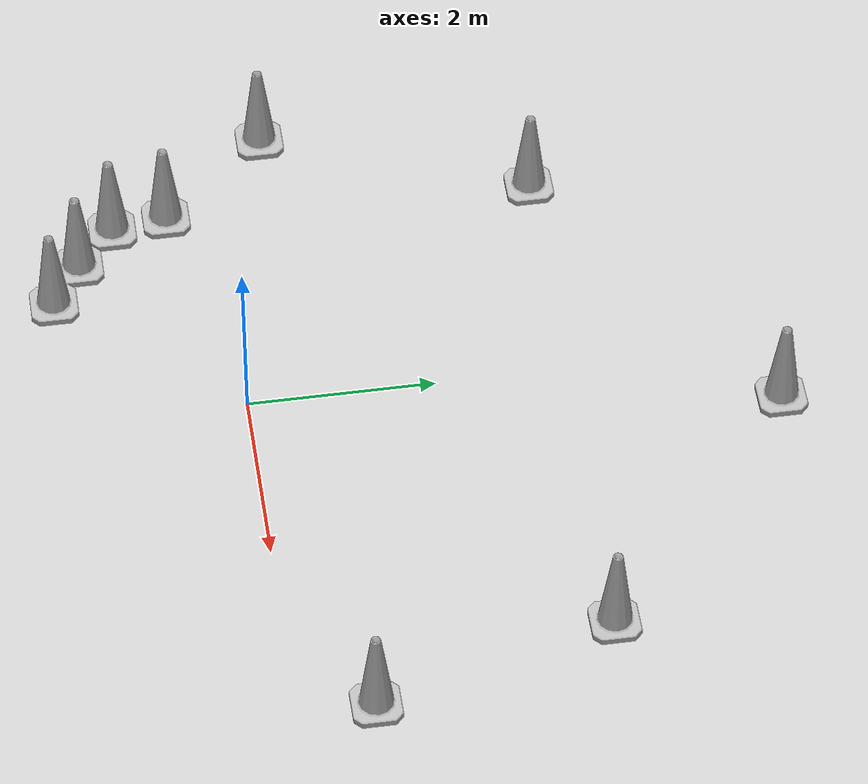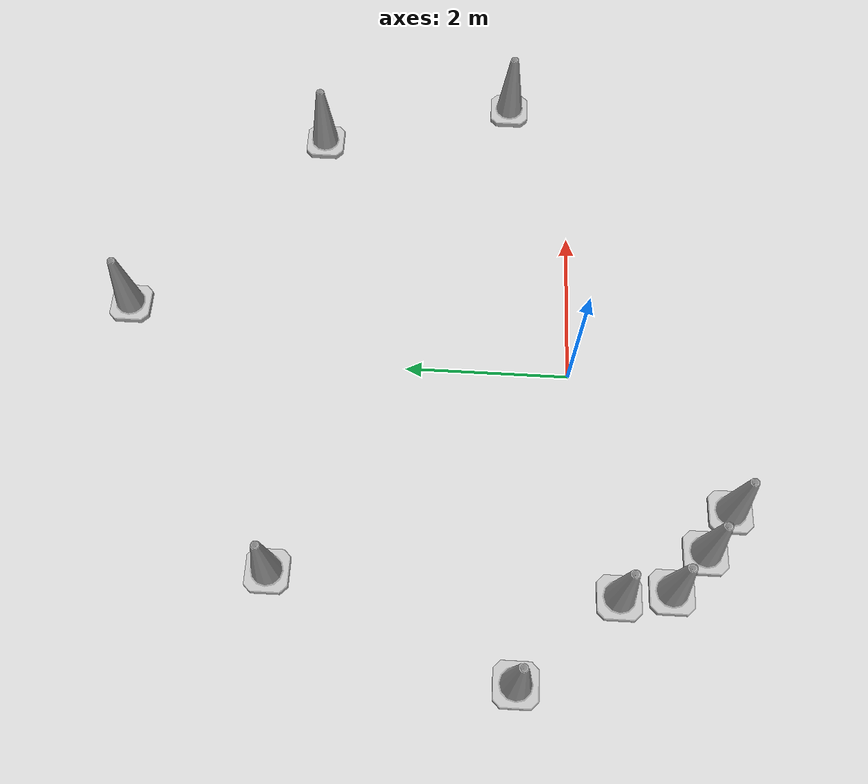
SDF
<sdf version="1.7">
 <world name="default">
  <plugin filename="gz-sim-physics-system" name="gz::sim::systems::Physics"/>
  <plugin filename="gz-sim-user-commands-system" name="gz::sim::systems::UserCommands"/>
  <plugin filename="gz-sim-scene-broadcaster-system" name="gz::sim::systems::SceneBroadcaster"/>
  <plugin filename="gz-sim-sensors-system" name="gz::sim::systems::Sensors">
   <render_engine>ogre2</render_engine>
  </plugin>
  <light name="sun" type="directional">
   <pose>0 0 10 0 -0 0</pose>
   <diffuse>0.8 0.8 0.8 1</diffuse>
   <specular>0.2 0.2 0.2 1</specular>
   <attenuation>
    <range>1000</range>
    <constant>0.9</constant>
    <linear>0.01</linear>
    <quadratic>0.001</quadratic>
   </attenuation>
   <direction>-0.5 0.1 -0.9</direction>
   <spot><inner_angle>0</inner_angle><outer_angle>0</outer_angle><falloff>0</falloff></spot>
  </light>
  <model name="ground_plane">
   <static>1</static>
   <link name="link">
    <collision name="collision">
     <geometry><plane><normal>0 0 1</normal><size>100 100</size></plane></geometry>
     <surface>
      <contact><collide_bitmask>65535</collide_bitmask></contact>
      <friction><ode><mu>100</mu><mu2>50</mu2></ode></friction>
     </surface>
    </collision>
    <visual name="visual">
     <cast_shadows>0</cast_shadows>
     <geometry><plane><normal>0 0 1</normal><size>100 100</size></plane></geometry>
     <material>
      <script><uri>file://media/materials/scripts/gazebo.material</uri><name>Gazebo/Grey</name></script>
     </material>
    </visual>
   </link>
  </model>
  <gravity>0 0 -9.8</gravity>
  <magnetic_field>6e-06 2.3e-05 -4.2e-05</magnetic_field>
  <atmosphere type="adiabatic"/>
  <physics type="ode">
   <max_step_size>0.001</max_step_size>
   <real_time_factor>1</real_time_factor>
   <real_time_update_rate>1000</real_time_update_rate>
  </physics>
  <scene><ambient>0.4 0.4 0.4 1</ambient><background>0.7 0.7 0.7 1</background><shadows>1</shadows></scene>
  <audio><device>default</device></audio>
  <spherical_coordinates>
   <surface_model>EARTH_WGS84</surface_model>
   <latitude_deg>0</latitude_deg>
   <longitude_deg>0</longitude_deg>
   <elevation>0</elevation>
   <heading_deg>0</heading_deg>
  </spherical_coordinates>
  <model name="Construction Cone">
   <link name="link">
    <collision name="collision">
     <geometry>
      <mesh><scale>10 10 10</scale><uri>model://construction_cone/meshes/construction_cone.dae</uri></mesh>
     </geometry>
    </collision>
    <visual name="visual">
     <geometry>
      <mesh><scale>10 10 10</scale><uri>model://construction_cone/meshes/construction_cone.dae</uri></mesh>
     </geometry>
    </visual>
    <inertial>
     <inertia><ixx>1</ixx><ixy>0</ixy><ixz>0</ixz><iyy>1</iyy><iyz>0</iyz><izz>1</izz></inertia>
     <mass>1</mass>
    </inertial>
   </link>
   <pose>-1.64149 -1.8737 -1e-05 0 -0 0.000608</pose>
  </model>
  <model name="Construction Cone_0">
   <link name="link">
    <collision name="collision">
     <geometry>
      <mesh><scale>10 10 10</scale><uri>model://construction_cone/meshes/construction_cone.dae</uri></mesh>
     </geometry>
    </collision>
    <visual name="visual">
     <geometry>
      <mesh><scale>10 10 10</scale><uri>model://construction_cone/meshes/construction_cone.dae</uri></mesh>
     </geometry>
    </visual>
    <inertial>
     <inertia><ixx>1</ixx><ixy>0</ixy><ixz>0</ixz><iyy>1</iyy><iyz>0</iyz><izz>1</izz></inertia>
     <mass>1</mass>
    </inertial>
   </link>
   <pose>-3.71569 0.585322 -0 0 -0 0</pose>
  </model>
  <model name="Construction Cone_1">
   <link name="link">
    <collision name="collision">
     <geometry>
      <mesh><scale>10 10 10</scale><uri>model://construction_cone/meshes/construction_cone.dae</uri></mesh>
     </geometry>
    </collision>
    <visual name="visual">
     <geometry>
      <mesh><scale>10 10 10</scale><uri>model://construction_cone/meshes/construction_cone.dae</uri></mesh>
     </geometry>
    </visual>
    <inertial>
     <inertia><ixx>1</ixx><ixy>0</ixy><ixz>0</ixz><iyy>1</iyy><iyz>0</iyz><izz>1</izz></inertia>
     <mass>1</mass>
    </inertial>
   </link>
   <pose>-2.62944 3.41056 0 -1e-06 0 0</pose>
  </model>
  <model name="Construction Cone_2">
   <link name="link">
    <collision name="collision">
     <geometry>
      <mesh><scale>10 10 10</scale><uri>model://construction_cone/meshes/construction_cone.dae</uri></mesh>
     </geometry>
    </collision>
    <visual name="visual">
     <geometry>
      <mesh><scale>10 10 10</scale><uri>model://construction_cone/meshes/construction_cone.dae</uri></mesh>
     </geometry>
    </visual>
    <inertial>
     <inertia><ixx>1</ixx><ixy>0</ixy><ixz>0</ixz><iyy>1</iyy><iyz>0</iyz><izz>1</izz></inertia>
     <mass>1</mass>
    </inertial>
   </link>
   <pose>4.08614 0.7942 0 -1e-06 0 0</pose>
  </model>
  <model name="Construction Cone_3">
   <link name="link">
    <collision name="collision">
     <geometry>
      <mesh><scale>10 10 10</scale><uri>model://construction_cone/meshes/construction_cone.dae</uri></mesh>
     </geometry>
    </collision>
    <visual name="visual">
     <geometry>
      <mesh><scale>10 10 10</scale><uri>model://construction_cone/meshes/construction_cone.dae</uri></mesh>
     </geometry>
    </visual>
    <inertial>
     <inertia><ixx>1</ixx><ixy>0</ixy><ixz>0</ixz><iyy>1</iyy><iyz>0</iyz><izz>1</izz></inertia>
     <mass>1</mass>
    </inertial>
   </link>
   <pose>3.40222 3.31664 -0 0 -1e-06 0</pose>
  </model>
  <model name="Construction Cone_4">
   <link name="link">
    <collision name="collision">
     <geometry>
      <mesh><scale>10 10 10</scale><uri>model://construction_cone/meshes/construction_cone.dae</uri></mesh>
     </geometry>
    </collision>
    <visual name="visual">
     <geometry>
      <mesh><scale>10 10 10</scale><uri>model://construction_cone/meshes/construction_cone.dae</uri></mesh>
     </geometry>
    </visual>
    <inertial>
     <inertia><ixx>1</ixx><ixy>0</ixy><ixz>0</ixz><iyy>1</iyy><iyz>0</iyz><izz>1</izz></inertia>
     <mass>1</mass>
    </inertial>
   </link>
   <pose>-2.71216 -0.556824 0 -0 -0 -0</pose>
  </model>
  <model name="Construction Cone_5">
   <link name="link">
    <collision name="collision">
     <geometry>
      <mesh><scale>10 10 10</scale><uri>model://construction_cone/meshes/construction_cone.dae</uri></mesh>
     </geometry>
    </collision>
    <visual name="visual">
     <geometry>
      <mesh><scale>10 10 10</scale><uri>model://construction_cone/meshes/construction_cone.dae</uri></mesh>
     </geometry>
    </visual>
    <inertial>
     <inertia><ixx>1</ixx><ixy>0</ixy><ixz>0</ixz><iyy>1</iyy><iyz>0</iyz><izz>1</izz></inertia>
     <mass>1</mass>
    </inertial>
   </link>
   <pose>0.716051 5.5545 -0 0 -0 0</pose>
  </model>
  <model name="Construction Cone_6">
   <link name="link">
    <collision name="collision">
     <geometry>
      <mesh><scale>10 10 10</scale><uri>model://construction_cone/meshes/construction_cone.dae</uri></mesh>
     </geometry>
    </collision>
    <visual name="visual">
     <geometry>
      <mesh><scale>10 10 10</scale><uri>model://construction_cone/meshes/construction_cone.dae</uri></mesh>
     </geometry>
    </visual>
    <inertial>
     <inertia><ixx>1</ixx><ixy>0</ixy><ixz>0</ixz><iyy>1</iyy><iyz>0</iyz><izz>1</izz></inertia>
     <mass>1</mass>
    </inertial>
   </link>
   <pose>-2.61598 -1.14954 -0 0 -1e-06 0</pose>
  </model>
  <model name="Construction Cone_7">
   <link name="link">
    <collision name="collision">
     <geometry>
      <mesh><scale>10 10 10</scale><uri>model://construction_cone/meshes/construction_cone.dae</uri></mesh>
     </geometry>
    </collision>
    <visual name="visual">
     <geometry>
      <mesh><scale>10 10 10</scale><uri>model://construction_cone/meshes/construction_cone.dae</uri></mesh>
     </geometry>
    </visual>
    <inertial>
     <inertia><ixx>1</ixx><ixy>0</ixy><ixz>0</ixz><iyy>1</iyy><iyz>0</iyz><izz>1</izz></inertia>
     <mass>1</mass>
    </inertial>
   </link>
   <pose>-2.14468 -1.55334 -0 0 -1e-06 0.001002</pose>
  </model>
 </world>
</sdf>
